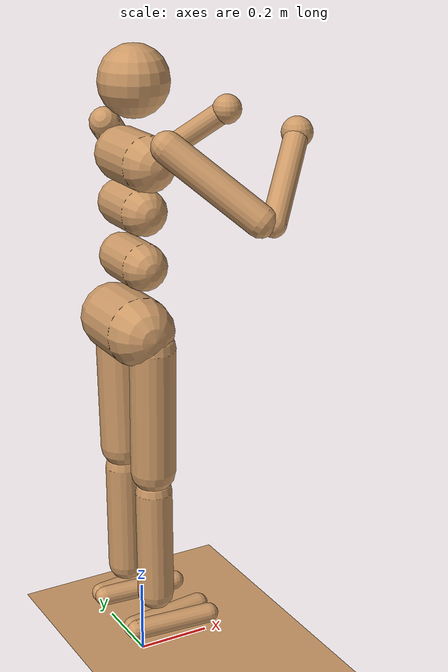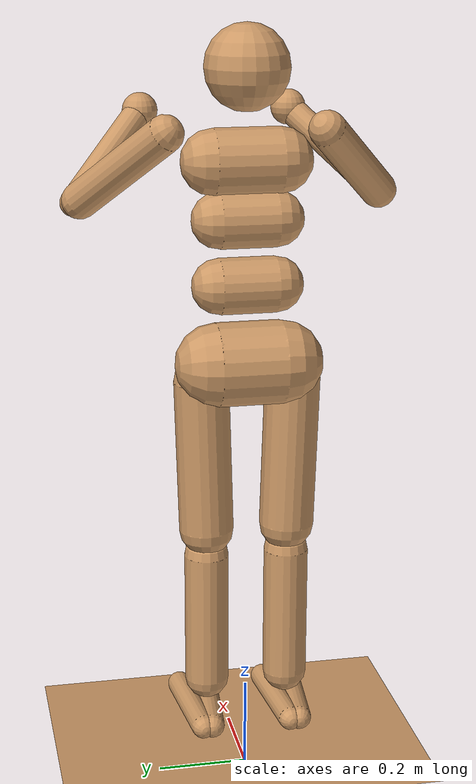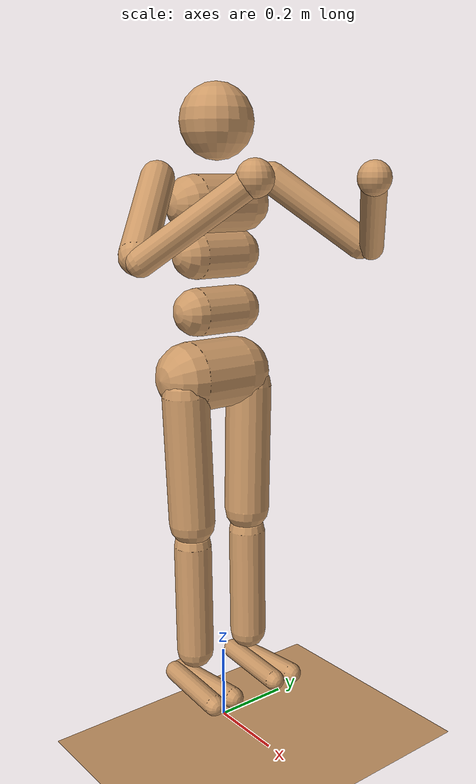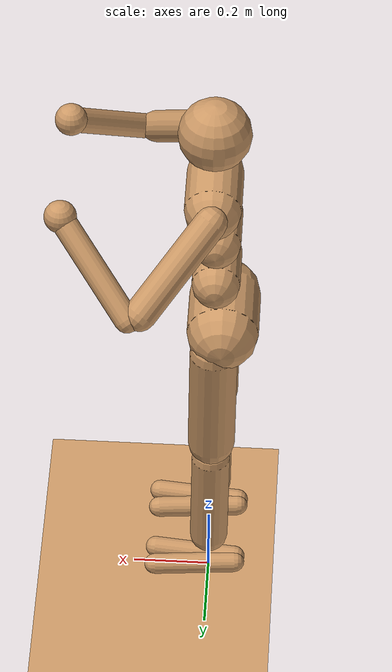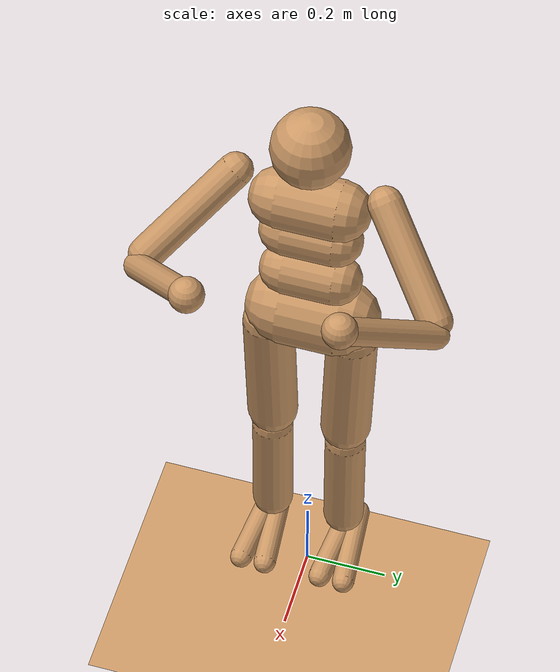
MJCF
<mujoco model='humanoid'>
  <compiler inertiafromgeom='true' angle='degree'/>

  <default>
    <joint limited='true' damping='1' armature='0'/>
    <geom contype='1' conaffinity='1' condim='1' rgba='0.8 0.6 .4 1'
      margin="0.001" solref=".02 1" solimp=".8 .8 .01" material="geom"/>
    <motor ctrlrange='-.4 .4' ctrllimited='true'/>
  </default>

  <option timestep='0.002' iterations="50" tolerance="1e-10" solver="Newton" jacobian="dense" cone="elliptic"/>

  <size nstack="1000000"/>

  <visual>
    <map fogstart="3" fogend="5" force="0.1" znear="0.5"/>
    <quality shadowsize="2048" offsamples="8"/>
    <global offwidth="800" offheight="800"/>
  </visual>

  <asset>
    <texture type="skybox" builtin="gradient" width="128" height="128" rgb1=".4 .6 .8"
        rgb2="0 0 0"/>
    <texture name="texgeom" type="cube" builtin="flat" mark="cross" width="127" height="1278"
        rgb1="0.8 0.6 0.4" rgb2="0.8 0.6 0.4" markrgb="1 1 1" random="0.01"/>
    <texture name="texplane" type="2d" builtin="checker" rgb1=".2 .3 .4" rgb2=".1 0.15 0.2"
        width="512" height="512"/>

    <material name='MatPlane' reflectance='0.3' texture="texplane" texrepeat="1 1" texuniform="true"/>
    <material name='geom' texture="texgeom" texuniform="true"/>
  </asset>

  <worldbody>
    <geom name='floor' pos='0 0 0' size='5 5 .125' type='plane' material="MatPlane" condim='3'/>

    <light mode='targetbodycom' target='torso' directional='false' diffuse='.7 .7 .7' ambient='.3 .3 .3' pos='0 0 4.0' dir='0 0 -1'/>

    <camera name='targeting' pos='1 1 2' mode='targetbodycom' target='torso'/>

    <body name='torso' pos='0 0 1.4'>

      <camera name='tracking' pos='1 1 2' zaxis="1 2 3" mode='trackcom'/>

      <site name='root' pos='0 0 0' type='sphere' group='4' size='0.06'/>
      <freejoint name="root"/>
      <geom name='torso1' type='capsule' fromto='0 -.07 0 0 .07 0'  size='0.07'/>
      <geom name='head' type='sphere' pos='0 0 .19' size='.09'/>
      <geom name='uwaist' type='capsule' fromto='-.01 -.06 -.12 -.01 .06 -.12' size='0.06'/>
      <body name='lwaist' pos='-.01 0 -0.260' quat='1.000 0 -0.002 0' >
        <geom name='lwaist' type='capsule' fromto='0 -.06 0 0 .06 0'  size='0.06' />
        <site name='abdomen_z' pos='0 0 0.065' type='sphere' group='4' size='0.06'/>
        <site name='abdomen_y' pos='0 0 0.065' type='sphere' group='4' size='0.06'/>
        <joint name='abdomen_z' type='hinge' pos='0 0 0.065' axis='0 0 1' range='-45 45' damping='5' stiffness='20' armature='0.02' />
        <joint name='abdomen_y' type='hinge' pos='0 0 0.065' axis='0 1 0' range='-75 30' damping='5' stiffness='10' armature='0.02' />
        <body name='pelvis' pos='0 0 -0.165' quat='1.000 0 -0.002 0' >
          <site name='abdomen_x' pos='0 0 0.1' type='sphere' group='4' size='0.06'/>
          <joint name='abdomen_x' type='hinge' pos='0 0 0.1' axis='1 0 0' range='-35 35' damping='5' stiffness='10' armature='0.02' />
          <geom name='butt' type='capsule' fromto='-.02 -.07 0 -.02 .07 0'  size='0.09' />
          <body name='right_thigh' pos='0 -0.1 -0.04' >
            <site name='right_hip_x' pos='0 0 0' type='sphere' group='4' size='0.06'/>
            <site name='right_hip_z' pos='0 0 0' type='sphere' group='4' size='0.06'/>
            <site name='right_hip_y' pos='0 0 0' type='sphere' group='4' size='0.06'/>
            <joint name='right_hip_x' type='hinge' pos='0 0 0' axis='1 0 0' range='-25 5'   damping='5' stiffness='10' armature='0.01' />
            <joint name='right_hip_z' type='hinge' pos='0 0 0' axis='0 0 1' range='-60 35'  damping='5' stiffness='10' armature='0.01' />
            <joint name='right_hip_y' type='hinge' pos='0 0 0' axis='0 1 0' range='-120 20' damping='5' stiffness='20' armature='0.01' />
            <geom name='right_thigh1' type='capsule' fromto='0 0 0 0 0.01 -.34'  size='0.06' />
            <body name='right_shin' pos='0 0.01 -0.403' >
              <site name='right_knee' pos='0 0 0.02' type='sphere' group='4' size='0.06'/>
              <joint name='right_knee' type='hinge' pos='0 0 .02' axis='0 -1 0' range='-160 -2' stiffness='1' armature='0.0060' />
              <geom name='right_shin1' type='capsule' fromto='0 0 0 0 0 -.3'   size='0.049' />
              <body name='right_foot' pos='0 0 -.39' >
                <site name='right_ankle_y' pos='0 0 0.08' type='sphere' group='4' size='0.06'/>
                <site name='right_ankle_x' pos='0 0 0.04' type='sphere' group='4' size='0.06'/>
                <joint name='right_ankle_y' type='hinge' pos='0 0 0.08' axis='0 1 0'   range='-50 50' stiffness='4' armature='0.0008' />
                <joint name='right_ankle_x' type='hinge' pos='0 0 0.04' axis='1 0 0.5' range='-50 50' stiffness='1'  armature='0.0006' />
                <geom name='right_foot_cap1' type='capsule' fromto='-.07 -0.02 0 0.14 -0.04 0'  size='0.027' />
                <geom name='right_foot_cap2' type='capsule' fromto='-.07 0 0 0.14  0.02 0'  size='0.027' />
              </body>
            </body>
          </body>
          <body name='left_thigh' pos='0 0.1 -0.04' >
            <site name='left_hip_x' pos='0 0 0' type='sphere' group='4' size='0.06'/>
            <site name='left_hip_z' pos='0 0 0' type='sphere' group='4' size='0.06'/>
            <site name='left_hip_y' pos='0 0 0' type='sphere' group='4' size='0.06'/>
            <joint name='left_hip_x' type='hinge' pos='0 0 0' axis='-1 0 0' range='-25 5'  damping='5' stiffness='10' armature='0.01' />
            <joint name='left_hip_z' type='hinge' pos='0 0 0' axis='0 0 -1' range='-60 35' damping='5' stiffness='10' armature='0.01' />
            <joint name='left_hip_y' type='hinge' pos='0 0 0' axis='0 1 0' range='-120 20' damping='5' stiffness='20' armature='0.01' />
            <geom name='left_thigh1' type='capsule' fromto='0 0 0 0 -0.01 -.34'  size='0.06' />
            <body name='left_shin' pos='0 -0.01 -0.403' >
              <site name='left_knee' pos='0 0 0.02' type='sphere' group='4' size='0.06'/>
              <joint name='left_knee' type='hinge' pos='0 0 .02' axis='0 -1 0' range='-160 -2' stiffness='1' armature='0.0060' />
              <geom name='left_shin1' type='capsule' fromto='0 0 0 0 0 -.3'   size='0.049' />
              <body name='left_foot' pos='0 0 -.39' >
                <site name='left_ankle_y' pos='0 0 0.08' type='sphere' group='4' size='0.06'/>
                <site name='left_ankle_x' pos='0 0 0.04' type='sphere' group='4' size='0.06'/>
                <joint name='left_ankle_y' type='hinge' pos='0 0 0.08' axis='0 1 0'   range='-50 50'  stiffness='4' armature='0.0008' />
                <joint name='left_ankle_x' type='hinge' pos='0 0 0.04' axis='1 0 0.5' range='-50 50'  stiffness='1'  armature='0.0006' />
                <geom name='left_foot_cap1' type='capsule' fromto='-.07 0.02 0 0.14 0.04 0'  size='0.027' />
                <geom name='left_foot_cap2' type='capsule' fromto='-.07 0 0 0.14  -0.02 0'  size='0.027' />
              </body>
            </body>
          </body>
        </body>
      </body>
      <body name='right_upper_arm' pos='0 -0.17 0.06' >
        <site name='right_shoulder1' pos='0 0 0' type='sphere' group='4' size='0.06'/>
        <site name='right_shoulder2' pos='0 0 0' type='sphere' group='4' size='0.06'/>
        <joint name='right_shoulder1' type='hinge' pos='0 0 0' axis='2 1 1'  range='-85 60' stiffness='1' armature='0.0068' />
        <joint name='right_shoulder2' type='hinge' pos='0 0 0' axis='0 -1 1' range='-85 60' stiffness='1'  armature='0.0051' />
        <geom name='right_uarm1' type='capsule' fromto='0 0 0 .16 -.16 -.16'  size='0.04 0.16' />
        <body name='right_lower_arm' pos='.18 -.18 -.18' >
          <site name='right_elbow' pos='0 0 0' type='sphere' group='4' size='0.06'/>
          <joint name='right_elbow' type='hinge' pos='0 0 0' axis='0 -1 1' range='-90 50'  stiffness='0' armature='0.0028' />
          <geom name='right_larm' type='capsule' fromto='0.01 0.01 0.01 .17 .17 .17'  size='0.031' />
          <geom name='right_hand' type='sphere' pos='.18 .18 .18'  size='0.04'/>
        </body>
      </body>
      <body name='left_upper_arm' pos='0 0.17 0.06' >
        <site name='left_shoulder1' pos='0 0 0' type='sphere' group='4' size='0.06'/>
        <site name='left_shoulder2' pos='0 0 0' type='sphere' group='4' size='0.06'/>
        <joint name='left_shoulder1' type='hinge' pos='0 0 0' axis='2 -1 1' range='-60 85' stiffness='1' armature='0.0068' />
        <joint name='left_shoulder2' type='hinge' pos='0 0 0' axis='0 1 1' range='-60 85'  stiffness='1' armature='0.0051' />
        <geom name='left_uarm1' type='capsule' fromto='0 0 0 .16 .16 -.16'  size='0.04 0.16' />
        <body name='left_lower_arm' pos='.18 .18 -.18' >
          <site name='left_elbow' pos='0 0 0' type='sphere' group='4' size='0.06'/>
          <joint name='left_elbow' type='hinge' pos='0 0 0' axis='0 -1 -1' range='-90 50' stiffness='0' armature='0.0028' />
          <geom name='left_larm' type='capsule' fromto='0.01 -0.01 0.01 .17 -.17 .17'  size='0.031' />
          <geom name='left_hand' type='sphere' pos='.18 -.18 .18'  size='0.04'/>
        </body>
      </body>
    </body>
  </worldbody>

  <actuator>
    <motor name='abdomen_y'       gear='200' joint='abdomen_y' />
    <motor name='abdomen_z'       gear='200' joint='abdomen_z' />
    <motor name='abdomen_x'       gear='200' joint='abdomen_x' />
    <motor name='right_hip_x'     gear='200' joint='right_hip_x' />
    <motor name='right_hip_z'     gear='200' joint='right_hip_z' />
    <motor name='right_hip_y'     gear='600' joint='right_hip_y' />
    <motor name='right_knee'      gear='400' joint='right_knee' />
    <motor name='right_ankle_x'   gear='100' joint='right_ankle_x' />
    <motor name='right_ankle_y'   gear='100' joint='right_ankle_y' />
    <motor name='left_hip_x'      gear='200' joint='left_hip_x' />
    <motor name='left_hip_z'      gear='200' joint='left_hip_z' />
    <motor name='left_hip_y'      gear='600' joint='left_hip_y' />
    <motor name='left_knee'       gear='400' joint='left_knee' />
    <motor name='left_ankle_x'    gear='100' joint='left_ankle_x' />
    <motor name='left_ankle_y'    gear='100' joint='left_ankle_y' />
    <motor name='right_shoulder1' gear='100' joint='right_shoulder1' />
    <motor name='right_shoulder2' gear='100' joint='right_shoulder2' />
    <motor name='right_elbow'     gear='200' joint='right_elbow' />
    <motor name='left_shoulder1'  gear='100' joint='left_shoulder1' />
    <motor name='left_shoulder2'  gear='100' joint='left_shoulder2' />
    <motor name='left_elbow'      gear='200' joint='left_elbow' />
  </actuator>
  <sensor>
    <jointpos name='jp_abdomen_z'           joint='abdomen_z'/>
    <jointpos name='jp_abdomen_y'           joint='abdomen_y'/>
    <jointpos name='jp_abdomen_x'           joint='abdomen_x'/>
    <jointpos name='jp_right_hip_x'         joint='right_hip_x'/>
    <jointpos name='jp_right_hip_z'         joint='right_hip_z'/>
    <jointpos name='jp_right_hip_y'         joint='right_hip_y'/>
    <jointpos name='jp_right_knee'          joint='right_knee'/>
    <jointpos name='jp_right_ankle_y'       joint='right_ankle_y'/>
    <jointpos name='jp_right_ankle_x'       joint='right_ankle_x'/>
    <jointpos name='jp_left_hip_x'          joint='left_hip_x'/>
    <jointpos name='jp_left_hip_z'          joint='left_hip_z'/>
    <jointpos name='jp_left_hip_y'          joint='left_hip_y'/>
    <jointpos name='jp_left_knee'           joint='left_knee'/>
    <jointpos name='jp_left_ankle_y'        joint='left_ankle_y'/>
    <jointpos name='jp_left_ankle_x'        joint='left_ankle_x'/>
    <jointpos name='jp_right_shoulder1'     joint='right_shoulder1'/>
    <jointpos name='jp_right_shoulder2'     joint='right_shoulder2'/>
    <jointpos name='jp_right_elbow'         joint='right_elbow'/>
    <jointpos name='jp_left_shoulder1'      joint='left_shoulder1'/>
    <jointpos name='jp_left_shoulder2'      joint='left_shoulder2'/>
    <jointpos name='jp_left_elbow'          joint='left_elbow'/>

    <jointvel name='jv_abdomen_z'           joint='abdomen_z'/>
    <jointvel name='jv_abdomen_y'           joint='abdomen_y'/>
    <jointvel name='jv_abdomen_x'           joint='abdomen_x'/>
    <jointvel name='jv_right_hip_x'         joint='right_hip_x'/>
    <jointvel name='jv_right_hip_z'         joint='right_hip_z'/>
    <jointvel name='jv_right_hip_y'         joint='right_hip_y'/>
    <jointvel name='jv_right_knee'          joint='right_knee'/>
    <jointvel name='jv_right_ankle_y'       joint='right_ankle_y'/>
    <jointvel name='jv_right_ankle_x'       joint='right_ankle_x'/>
    <jointvel name='jv_left_hip_x'          joint='left_hip_x'/>
    <jointvel name='jv_left_hip_z'          joint='left_hip_z'/>
    <jointvel name='jv_left_hip_y'          joint='left_hip_y'/>
    <jointvel name='jv_left_knee'           joint='left_knee'/>
    <jointvel name='jv_left_ankle_y'        joint='left_ankle_y'/>
    <jointvel name='jv_left_ankle_x'        joint='left_ankle_x'/>
    <jointvel name='jv_right_shoulder1'     joint='right_shoulder1'/>
    <jointvel name='jv_right_shoulder2'     joint='right_shoulder2'/>
    <jointvel name='jv_right_elbow'         joint='right_elbow'/>
    <jointvel name='jv_left_shoulder1'      joint='left_shoulder1'/>
    <jointvel name='jv_left_shoulder2'      joint='left_shoulder2'/>
    <jointvel name='jv_left_elbow'          joint='left_elbow'/>

    <accelerometer  name='a_abdomen_z'           site='abdomen_z'/>
    <accelerometer  name='a_abdomen_y'           site='abdomen_y'/>
    <accelerometer  name='a_abdomen_x'           site='abdomen_x'/>
    <accelerometer  name='a_right_hip_x'         site='right_hip_x'/>
    <accelerometer  name='a_right_hip_z'         site='right_hip_z'/>
    <accelerometer  name='a_right_hip_y'         site='right_hip_y'/>
    <accelerometer  name='a_right_knee'          site='right_knee'/>
    <accelerometer  name='a_right_ankle_y'       site='right_ankle_y'/>
    <accelerometer  name='a_right_ankle_x'       site='right_ankle_x'/>
    <accelerometer  name='a_left_hip_x'          site='left_hip_x'/>
    <accelerometer  name='a_left_hip_z'          site='left_hip_z'/>
    <accelerometer  name='a_left_hip_y'          site='left_hip_y'/>
    <accelerometer  name='a_left_knee'           site='left_knee'/>
    <accelerometer  name='a_left_ankle_y'        site='left_ankle_y'/>
    <accelerometer  name='a_left_ankle_x'        site='left_ankle_x'/>
    <accelerometer  name='a_right_shoulder1'     site='right_shoulder1'/>
    <accelerometer  name='a_right_shoulder2'     site='right_shoulder2'/>
    <accelerometer  name='a_right_elbow'         site='right_elbow'/>
    <accelerometer  name='a_left_shoulder1'      site='left_shoulder1'/>
    <accelerometer  name='a_left_shoulder2'      site='left_shoulder2'/>
    <accelerometer  name='a_left_elbow'          site='left_elbow'/>

    <velocimeter  name='v_abdomen_z'           site='abdomen_z'/>
    <velocimeter  name='v_abdomen_y'           site='abdomen_y'/>
    <velocimeter  name='v_abdomen_x'           site='abdomen_x'/>
    <velocimeter  name='v_right_hip_x'         site='right_hip_x'/>
    <velocimeter  name='v_right_hip_z'         site='right_hip_z'/>
    <velocimeter  name='v_right_hip_y'         site='right_hip_y'/>
    <velocimeter  name='v_right_knee'          site='right_knee'/>
    <velocimeter  name='v_right_ankle_y'       site='right_ankle_y'/>
    <velocimeter  name='v_right_ankle_x'       site='right_ankle_x'/>
    <velocimeter  name='v_left_hip_x'          site='left_hip_x'/>
    <velocimeter  name='v_left_hip_z'          site='left_hip_z'/>
    <velocimeter  name='v_left_hip_y'          site='left_hip_y'/>
    <velocimeter  name='v_left_knee'           site='left_knee'/>
    <velocimeter  name='v_left_ankle_y'        site='left_ankle_y'/>
    <velocimeter  name='v_left_ankle_x'        site='left_ankle_x'/>
    <velocimeter  name='v_right_shoulder1'     site='right_shoulder1'/>
    <velocimeter  name='v_right_shoulder2'     site='right_shoulder2'/>
    <velocimeter  name='v_right_elbow'         site='right_elbow'/>
    <velocimeter  name='v_left_shoulder1'      site='left_shoulder1'/>
    <velocimeter  name='v_left_shoulder2'      site='left_shoulder2'/>
    <velocimeter  name='v_left_elbow'          site='left_elbow'/>

    <gyro  name='g_abdomen_z'           site='abdomen_z'/>
    <gyro  name='g_abdomen_y'           site='abdomen_y'/>
    <gyro  name='g_abdomen_x'           site='abdomen_x'/>
    <gyro  name='g_right_hip_x'         site='right_hip_x'/>
    <gyro  name='g_right_hip_z'         site='right_hip_z'/>
    <gyro  name='g_right_hip_y'         site='right_hip_y'/>
    <gyro  name='g_right_knee'          site='right_knee'/>
    <gyro  name='g_right_ankle_y'       site='right_ankle_y'/>
    <gyro  name='g_right_ankle_x'       site='right_ankle_x'/>
    <gyro  name='g_left_hip_x'          site='left_hip_x'/>
    <gyro  name='g_left_hip_z'          site='left_hip_z'/>
    <gyro  name='g_left_hip_y'          site='left_hip_y'/>
    <gyro  name='g_left_knee'           site='left_knee'/>
    <gyro  name='g_left_ankle_y'        site='left_ankle_y'/>
    <gyro  name='g_left_ankle_x'        site='left_ankle_x'/>
    <gyro  name='g_right_shoulder1'     site='right_shoulder1'/>
    <gyro  name='g_right_shoulder2'     site='right_shoulder2'/>
    <gyro  name='g_right_elbow'         site='right_elbow'/>
    <gyro  name='g_left_shoulder1'      site='left_shoulder1'/>
    <gyro  name='g_left_shoulder2'      site='left_shoulder2'/>
    <gyro  name='g_left_elbow'          site='left_elbow'/>

    <force  name='f_abdomen_z'           site='abdomen_z'/>
    <force  name='f_abdomen_y'           site='abdomen_y'/>
    <force  name='f_abdomen_x'           site='abdomen_x'/>
    <force  name='f_right_hip_x'         site='right_hip_x'/>
    <force  name='f_right_hip_z'         site='right_hip_z'/>
    <force  name='f_right_hip_y'         site='right_hip_y'/>
    <force  name='f_right_knee'          site='right_knee'/>
    <force  name='f_right_ankle_y'       site='right_ankle_y'/>
    <force  name='f_right_ankle_x'       site='right_ankle_x'/>
    <force  name='f_left_hip_x'          site='left_hip_x'/>
    <force  name='f_left_hip_z'          site='left_hip_z'/>
    <force  name='f_left_hip_y'          site='left_hip_y'/>
    <force  name='f_left_knee'           site='left_knee'/>
    <force  name='f_left_ankle_y'        site='left_ankle_y'/>
    <force  name='f_left_ankle_x'        site='left_ankle_x'/>
    <force  name='f_right_shoulder1'     site='right_shoulder1'/>
    <force  name='f_right_shoulder2'     site='right_shoulder2'/>
    <force  name='f_right_elbow'         site='right_elbow'/>
    <force  name='f_left_shoulder1'      site='left_shoulder1'/>
    <force  name='f_left_shoulder2'      site='left_shoulder2'/>
    <force  name='f_left_elbow'          site='left_elbow'/>

    <torque  name='t_abdomen_z'           site='abdomen_z'/>
    <torque  name='t_abdomen_y'           site='abdomen_y'/>
    <torque  name='t_abdomen_x'           site='abdomen_x'/>
    <torque  name='t_right_hip_x'         site='right_hip_x'/>
    <torque  name='t_right_hip_z'         site='right_hip_z'/>
    <torque  name='t_right_hip_y'         site='right_hip_y'/>
    <torque  name='t_right_knee'          site='right_knee'/>
    <torque  name='t_right_ankle_y'       site='right_ankle_y'/>
    <torque  name='t_right_ankle_x'       site='right_ankle_x'/>
    <torque  name='t_left_hip_x'          site='left_hip_x'/>
    <torque  name='t_left_hip_z'          site='left_hip_z'/>
    <torque  name='t_left_hip_y'          site='left_hip_y'/>
    <torque  name='t_left_knee'           site='left_knee'/>
    <torque  name='t_left_ankle_y'        site='left_ankle_y'/>
    <torque  name='t_left_ankle_x'        site='left_ankle_x'/>
    <torque  name='t_right_shoulder1'     site='right_shoulder1'/>
    <torque  name='t_right_shoulder2'     site='right_shoulder2'/>
    <torque  name='t_right_elbow'         site='right_elbow'/>
    <torque  name='t_left_shoulder1'      site='left_shoulder1'/>
    <torque  name='t_left_shoulder2'      site='left_shoulder2'/>
    <torque  name='t_left_elbow'          site='left_elbow'/>

  </sensor>
</mujoco>
